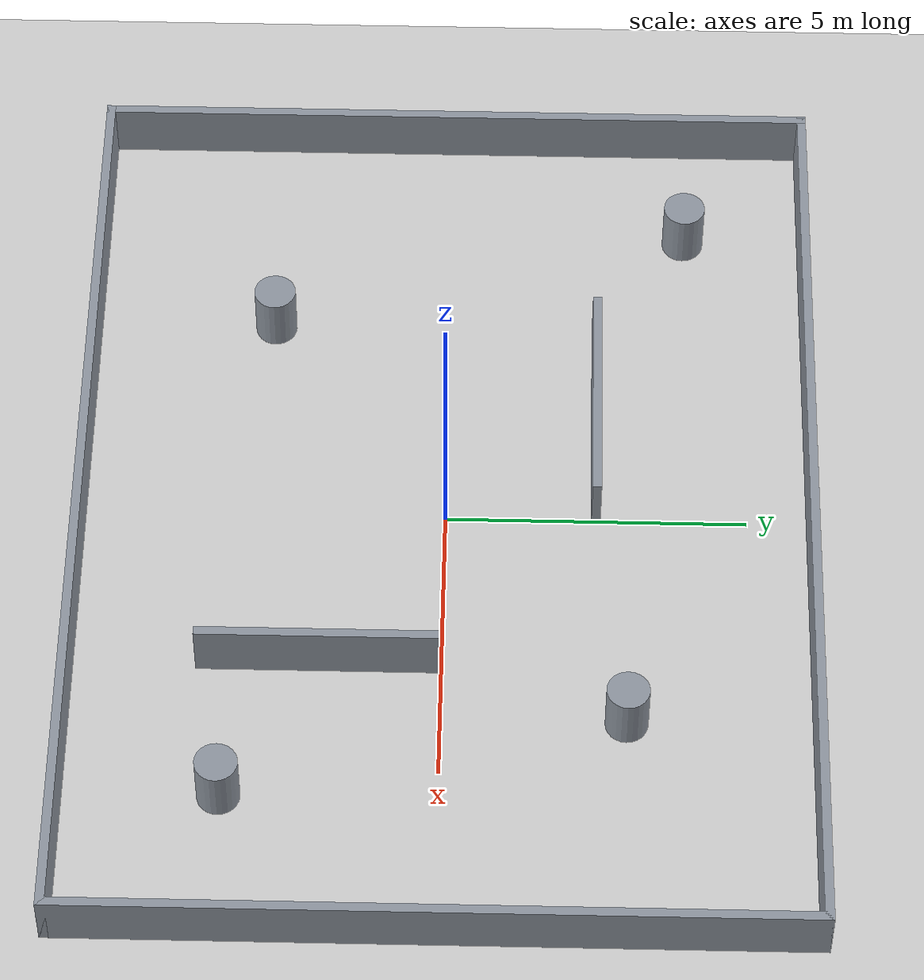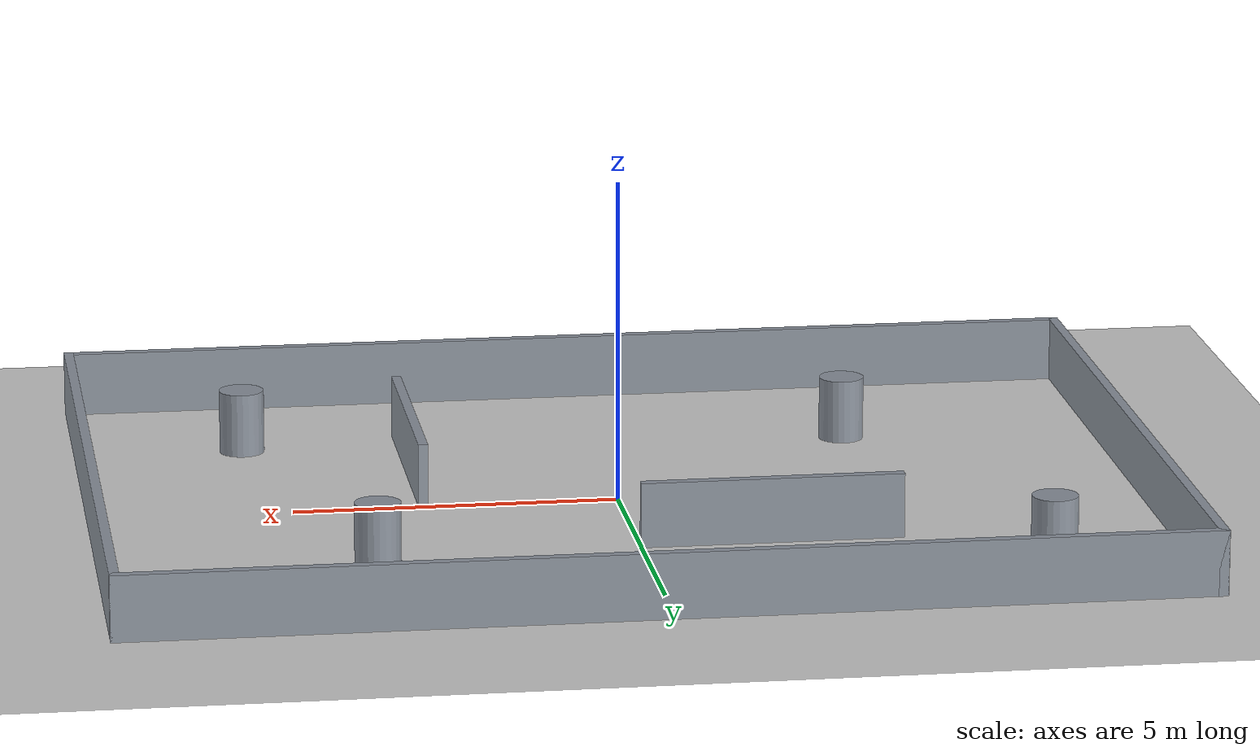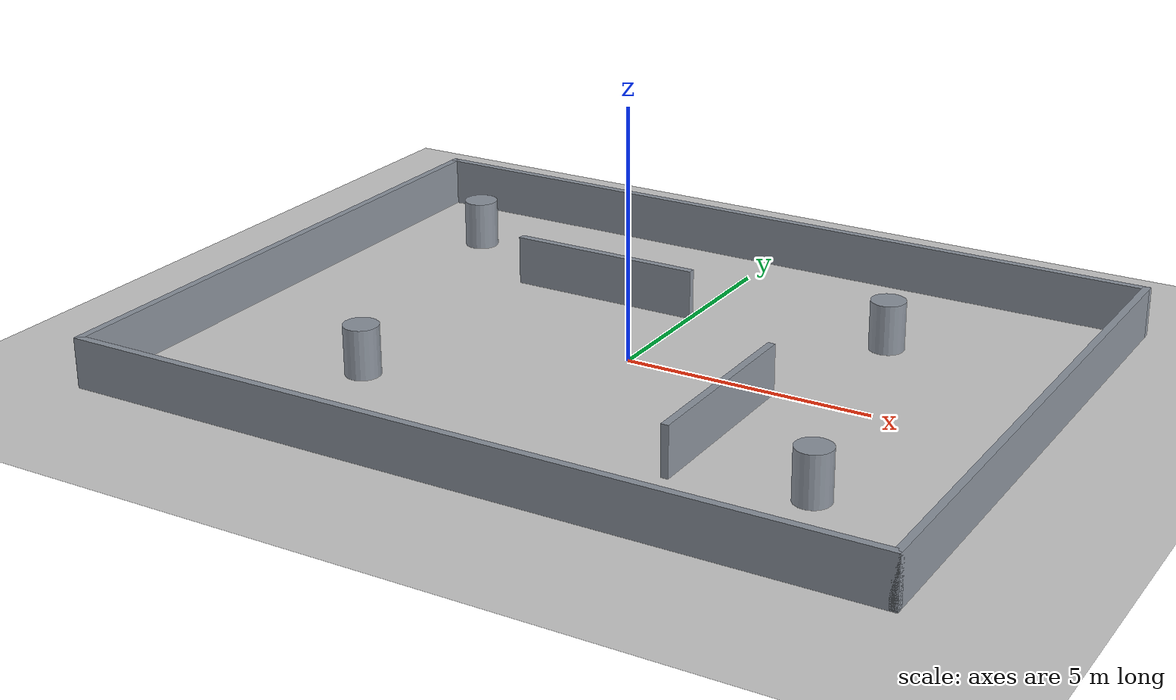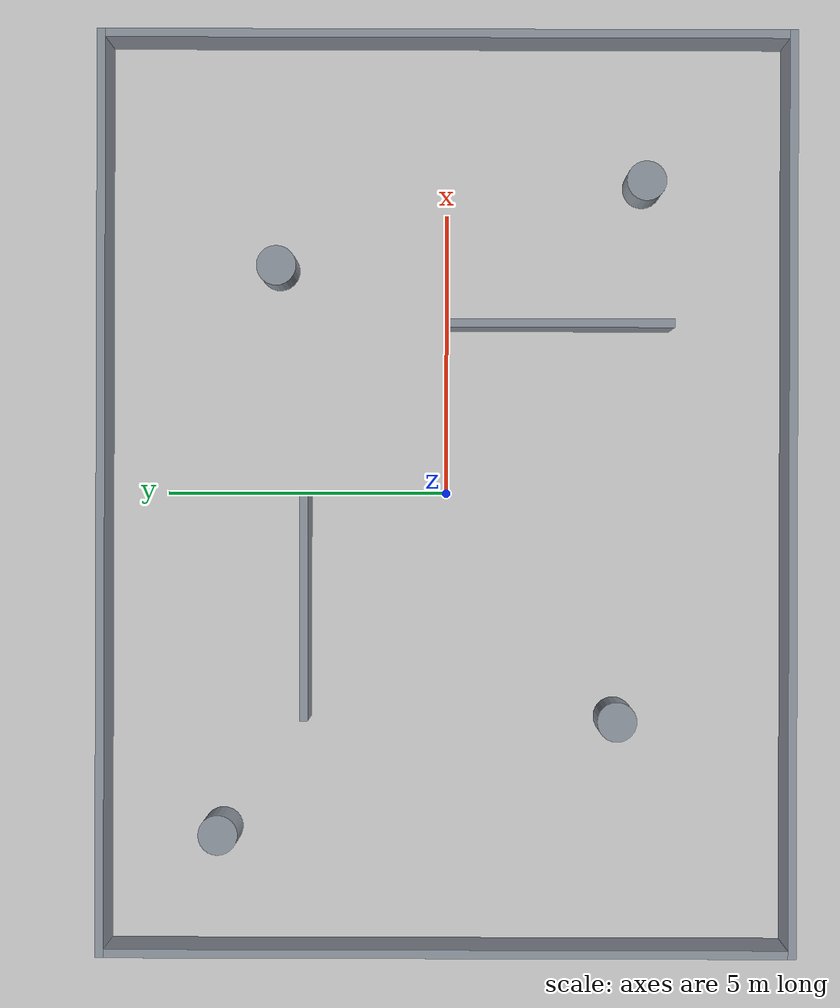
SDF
<?xml version='1.0'?>
<sdf version='1.6'>
  <world name='arena'>

    <physics type='ode'>
      <real_time_update_rate>1000.0</real_time_update_rate>
      <max_step_size>0.001</max_step_size>
      <real_time_factor>1</real_time_factor>
      <ode>
        <solver>
          <type>quick</type>
          <iters>150</iters>
          <precon_iters>0</precon_iters>
          <sor>1.400000</sor>
          <use_dynamic_moi_rescaling>1</use_dynamic_moi_rescaling>
        </solver>
        <constraints>
          <cfm>0.00001</cfm>
          <erp>0.2</erp>
          <contact_max_correcting_vel>2000.000000</contact_max_correcting_vel>
          <contact_surface_layer>0.01000</contact_surface_layer>
        </constraints>
      </ode>
    </physics>

    <include><uri>model://sun</uri></include>
    <include><uri>model://ground_plane</uri></include>

    <plugin name='gazebo_ros_state' filename='libgazebo_ros_state.so'>
      <ros>
        <namespace>/gazebo</namespace>
      </ros>
      <update_rate>20</update_rate>
    </plugin>

    <!-- shadows off: shadow mapping is re-rendered every frame in gzclient and buys
         nothing for a lidar-driven test. -->
    <scene>
      <ambient>0.6 0.6 0.6 1</ambient>
      <background>0.7 0.75 0.8 1</background>
      <shadows>false</shadows>
    </scene>

    <model name='obstacle_0'>
      <static>true</static>
      <pose>0.0000 6.0750 0.5000 0 0 0</pose>
      <link name='link'>
        <collision name='collision'>
          <geometry><box><size>16.3000 0.1500 1.0000</size></box></geometry>
        </collision>
        <visual name='visual'>
          <geometry><box><size>16.3000 0.1500 1.0000</size></box></geometry>
          <material>
            <ambient>0.42 0.45 0.5 1</ambient>
            <diffuse>0.55 0.58 0.62 1</diffuse>
          </material>
        </visual>
      </link>
    </model>
    <model name='obstacle_1'>
      <static>true</static>
      <pose>0.0000 -6.0750 0.5000 0 0 0</pose>
      <link name='link'>
        <collision name='collision'>
          <geometry><box><size>16.3000 0.1500 1.0000</size></box></geometry>
        </collision>
        <visual name='visual'>
          <geometry><box><size>16.3000 0.1500 1.0000</size></box></geometry>
          <material>
            <ambient>0.42 0.45 0.5 1</ambient>
            <diffuse>0.55 0.58 0.62 1</diffuse>
          </material>
        </visual>
      </link>
    </model>
    <model name='obstacle_2'>
      <static>true</static>
      <pose>8.0750 0.0000 0.5000 0 0 0</pose>
      <link name='link'>
        <collision name='collision'>
          <geometry><box><size>0.1500 12.3000 1.0000</size></box></geometry>
        </collision>
        <visual name='visual'>
          <geometry><box><size>0.1500 12.3000 1.0000</size></box></geometry>
          <material>
            <ambient>0.42 0.45 0.5 1</ambient>
            <diffuse>0.55 0.58 0.62 1</diffuse>
          </material>
        </visual>
      </link>
    </model>
    <model name='obstacle_3'>
      <static>true</static>
      <pose>-8.0750 0.0000 0.5000 0 0 0</pose>
      <link name='link'>
        <collision name='collision'>
          <geometry><box><size>0.1500 12.3000 1.0000</size></box></geometry>
        </collision>
        <visual name='visual'>
          <geometry><box><size>0.1500 12.3000 1.0000</size></box></geometry>
          <material>
            <ambient>0.42 0.45 0.5 1</ambient>
            <diffuse>0.55 0.58 0.62 1</diffuse>
          </material>
        </visual>
      </link>
    </model>
    <model name='obstacle_4'>
      <static>true</static>
      <pose>-2.0000 2.5000 0.5000 0 0 0</pose>
      <link name='link'>
        <collision name='collision'>
          <geometry><box><size>4.0000 0.1500 1.0000</size></box></geometry>
        </collision>
        <visual name='visual'>
          <geometry><box><size>4.0000 0.1500 1.0000</size></box></geometry>
          <material>
            <ambient>0.42 0.45 0.5 1</ambient>
            <diffuse>0.55 0.58 0.62 1</diffuse>
          </material>
        </visual>
      </link>
    </model>
    <model name='obstacle_5'>
      <static>true</static>
      <pose>3.0000 -2.0000 0.5000 0 0 0</pose>
      <link name='link'>
        <collision name='collision'>
          <geometry><box><size>0.1500 4.0000 1.0000</size></box></geometry>
        </collision>
        <visual name='visual'>
          <geometry><box><size>0.1500 4.0000 1.0000</size></box></geometry>
          <material>
            <ambient>0.42 0.45 0.5 1</ambient>
            <diffuse>0.55 0.58 0.62 1</diffuse>
          </material>
        </visual>
      </link>
    </model>
    <model name='obstacle_6'>
      <static>true</static>
      <pose>4.0000 3.0000 0.5000 0 0 0</pose>
      <link name='link'>
        <collision name='collision'>
          <geometry><cylinder><radius>0.3500</radius><length>1.0000</length></cylinder></geometry>
        </collision>
        <visual name='visual'>
          <geometry><cylinder><radius>0.3500</radius><length>1.0000</length></cylinder></geometry>
          <material>
            <ambient>0.42 0.45 0.5 1</ambient>
            <diffuse>0.55 0.58 0.62 1</diffuse>
          </material>
        </visual>
      </link>
    </model>
    <model name='obstacle_7'>
      <static>true</static>
      <pose>-4.0000 -3.0000 0.5000 0 0 0</pose>
      <link name='link'>
        <collision name='collision'>
          <geometry><cylinder><radius>0.3500</radius><length>1.0000</length></cylinder></geometry>
        </collision>
        <visual name='visual'>
          <geometry><cylinder><radius>0.3500</radius><length>1.0000</length></cylinder></geometry>
          <material>
            <ambient>0.42 0.45 0.5 1</ambient>
            <diffuse>0.55 0.58 0.62 1</diffuse>
          </material>
        </visual>
      </link>
    </model>
    <model name='obstacle_8'>
      <static>true</static>
      <pose>5.5000 -3.5000 0.5000 0 0 0</pose>
      <link name='link'>
        <collision name='collision'>
          <geometry><cylinder><radius>0.3500</radius><length>1.0000</length></cylinder></geometry>
        </collision>
        <visual name='visual'>
          <geometry><cylinder><radius>0.3500</radius><length>1.0000</length></cylinder></geometry>
          <material>
            <ambient>0.42 0.45 0.5 1</ambient>
            <diffuse>0.55 0.58 0.62 1</diffuse>
          </material>
        </visual>
      </link>
    </model>
    <model name='obstacle_9'>
      <static>true</static>
      <pose>-6.0000 4.0000 0.5000 0 0 0</pose>
      <link name='link'>
        <collision name='collision'>
          <geometry><cylinder><radius>0.3500</radius><length>1.0000</length></cylinder></geometry>
        </collision>
        <visual name='visual'>
          <geometry><cylinder><radius>0.3500</radius><length>1.0000</length></cylinder></geometry>
          <material>
            <ambient>0.42 0.45 0.5 1</ambient>
            <diffuse>0.55 0.58 0.62 1</diffuse>
          </material>
        </visual>
      </link>
    </model>

  </world>
</sdf>
